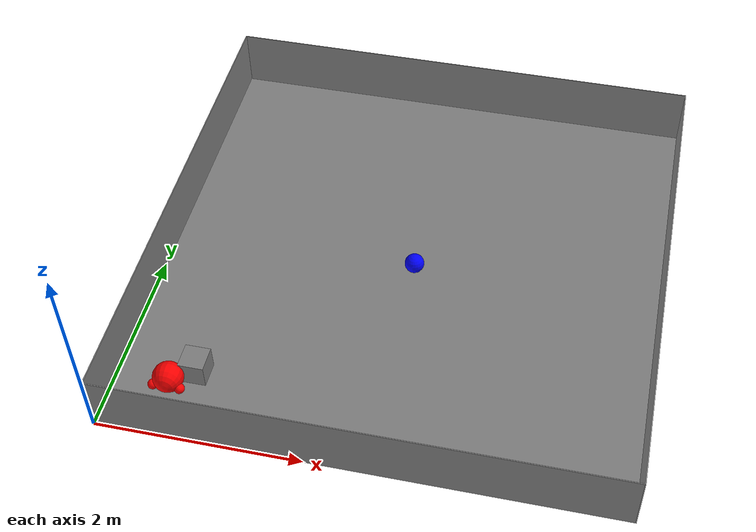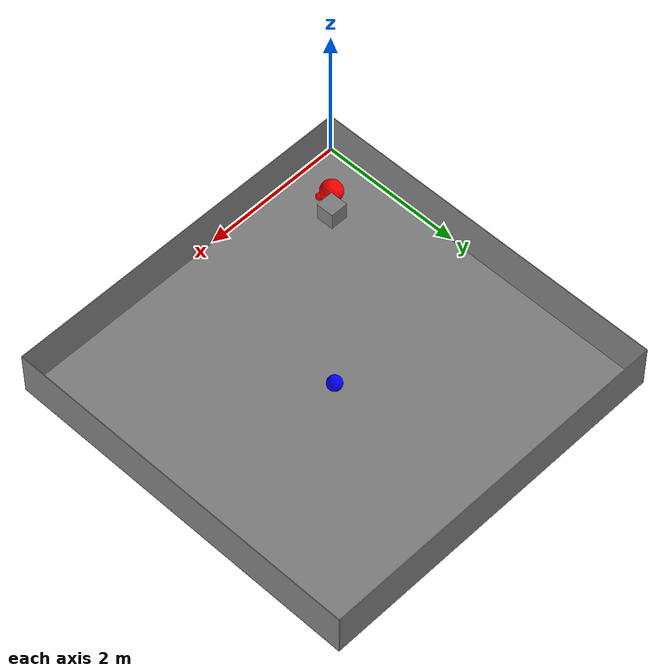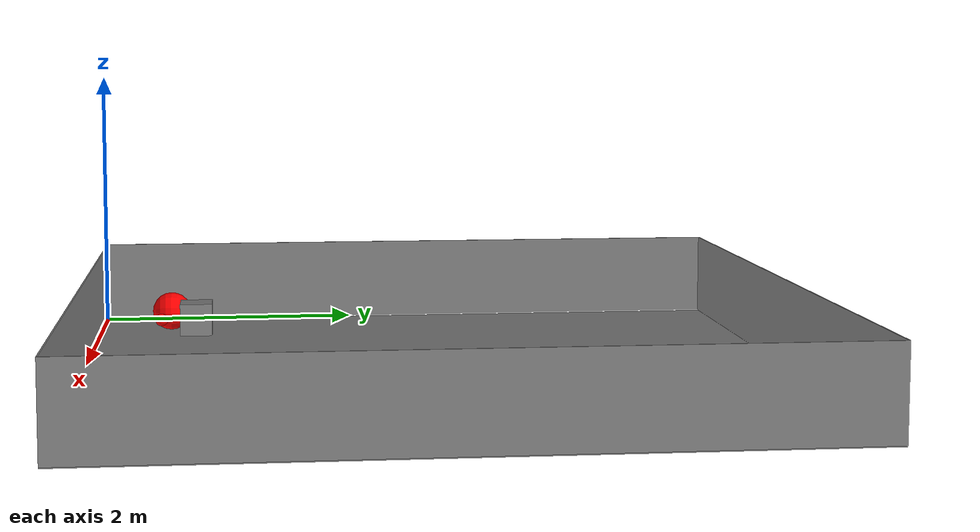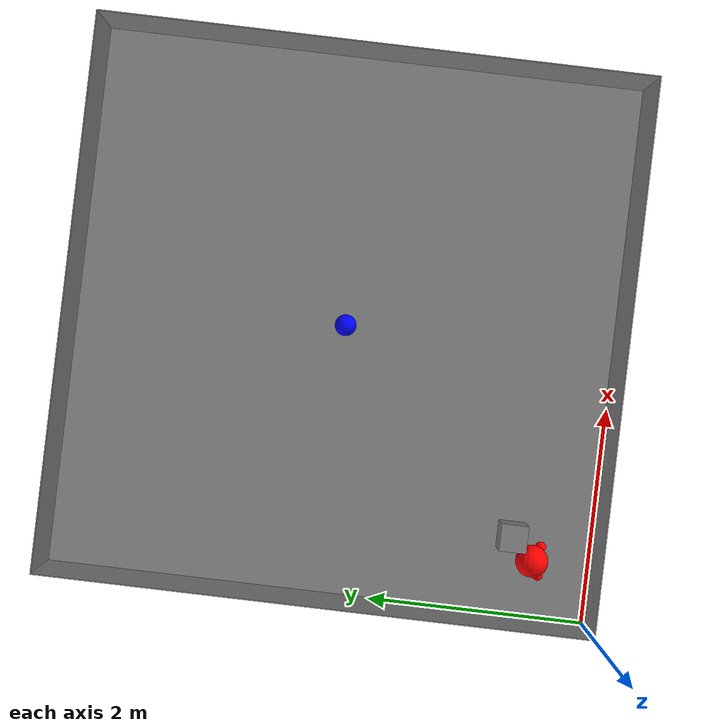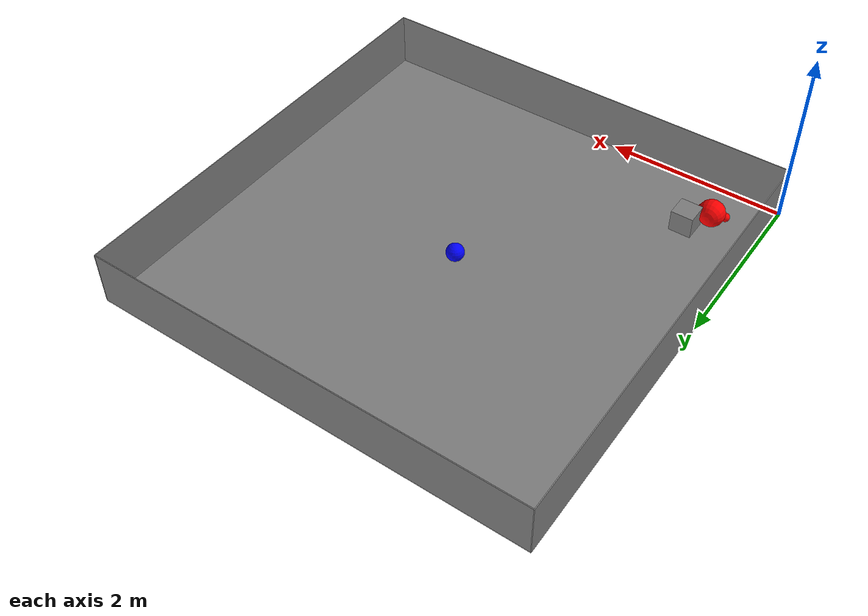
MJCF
<mujoco model="MuJoCo Model">
    <compiler angle="radian" coordinate="local"/>
    <default>
        <default class="active_adhesion">
        <geom rgba=".8 .5 .5 1" margin=".01" gap=".01"/>
        </default>
    </default>
    <option timestep="0.005" />
    <option>
        <flag multiccd="enable"/>
    </option>
    <size njmax="500" nconmax="100" />
    <worldbody>
        <geom name="floor0" size="2.5 2.5 1" pos="2.5 2.5 0" type="plane" />
        <body name="floor0" pos="2.5 2.5 0">
            <inertial pos="2.5 2.5 0" mass="0" diaginertia="0 0 0" />
            <site name="target" pos="0 0 0.05" size="0.1" rgba="0 0 1 1" />
        </body>
        <body name="wall1" pos="0.005 2.5 0.3125">
            <inertial pos="0 0 0" mass="31.25" diaginertia="66.1214 1.01751 65.1044" />
            <geom name="wall1" size="0.005 2.5 0.3125" type="box" margin=".05" gap=".05"/>
        </body>
        <body name="wall2" pos="4.995 2.5 0.3125">
            <inertial pos="0 0 0" mass="31.25" diaginertia="66.1214 1.01751 65.1044" />
            <geom name="wall2" size="0.005 2.5 0.3125" type="box" margin=".05" gap=".05"/>
        </body>
        <body name="wall3" pos="2.5 0.005 0.3125">
            <inertial pos="0 0 0" mass="31.125" diaginertia="1.01344 65.3392 64.3263" />
            <geom name="wall3" size="2.49 0.005 0.3125" type="box" margin=".05" gap=".05"/>
        </body>
        <body name="wall4" pos="2.5 4.995 0.3125">
            <inertial pos="0 0 0" mass="31.125" diaginertia="1.01344 65.3392 64.3263" />
            <geom name="wall4" size="2.49 0.005 0.3125" type="box" margin=".05" gap=".05"/>
        </body>
        <body name="particle_hinge0:particle" pos="0.55 0.55 0.15">
            <joint name="particle_hinge0:tx" pos="0 0 0" axis="1 0 0" type="slide" damping="10" />
            <joint name="particle_hinge0:ty" pos="0 0 0" axis="0 1 0" type="slide" damping="10" />
            <joint name="particle_hinge0:tz" pos="0 0 0" axis="0 0 1" type="slide" damping="10000" />
            <joint name="particle_hinge0:rz" pos="0 0 0" axis="0 0 1" damping="10" />
            <geom name="particle_hinge0:agent" size="0.15" quat="0.707388 0.706825 0 0" rgba="1 0 0 1" condim="1" priority="2" margin="0.01" gap="0.01"/>
            <geom name="particle_hinge0:arm1" size="0.05" pos="-0.13 -0.075 -0.05" quat="0.707388 0.706825 0 0" rgba="1 0 0 1"/>
            <geom name="particle_hinge0:arm2" size="0.05" pos="0.13 -0.075 -0.05" quat="0.707388 0.706825 0 0" rgba="1 0 0 1"/>
            <site name="player" pos="0 0 0" size="0.1" rgba="0 0 1 1" />
        </body>
        <body name="cube0" pos="0.75 0.75 0.125">
            <joint name="cube0:slide0" pos="0 0 0" axis="1 0 0" type="slide" damping="0.01" />
            <joint name="cube0:slide1" pos="0 0 0" axis="0 1 0" type="slide" damping="0.01" />
            <joint name="cube0:slide2" pos="0 0 0" axis="0 0 1" type="slide" damping="0.01" />
            <geom name="cube0" size="0.125 0.125 0.125" type="box" condim="1" mass="0.05"/>
            <site name="cube0" pos="0 0 0" size="0.1" rgba="0 0 1 1" />
        </body>
    </worldbody>
    <actuator>
        <general name="particle_hinge0:motortx" joint="particle_hinge0:tx" gear="100 0 0 0 0 0" ctrllimited="true" ctrlrange="-10 10"/>
        <general name="particle_hinge0:motorty" joint="particle_hinge0:ty" gear="100 0 0 0 0 0" ctrllimited="true" ctrlrange="-10 10"/>
        <general name="particle_hinge0:motorrz" joint="particle_hinge0:rz" gear="100 0 0 0 0 0" ctrllimited="true" ctrlrange="-10 10"/>
    </actuator>
</mujoco>
